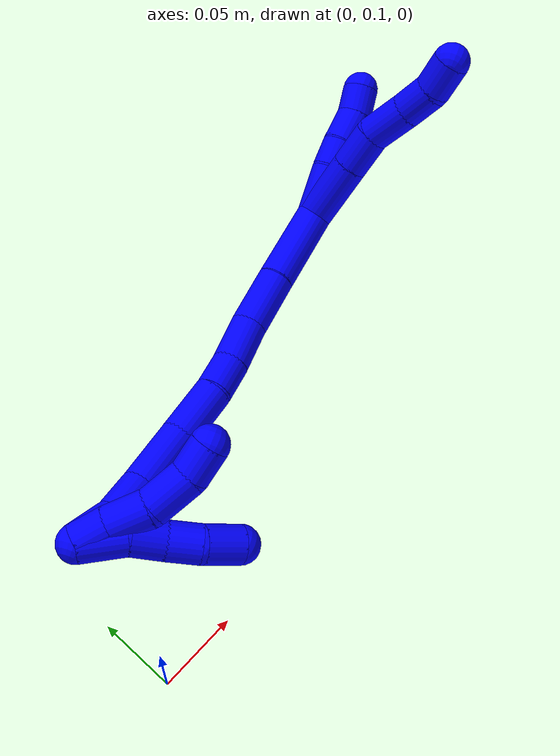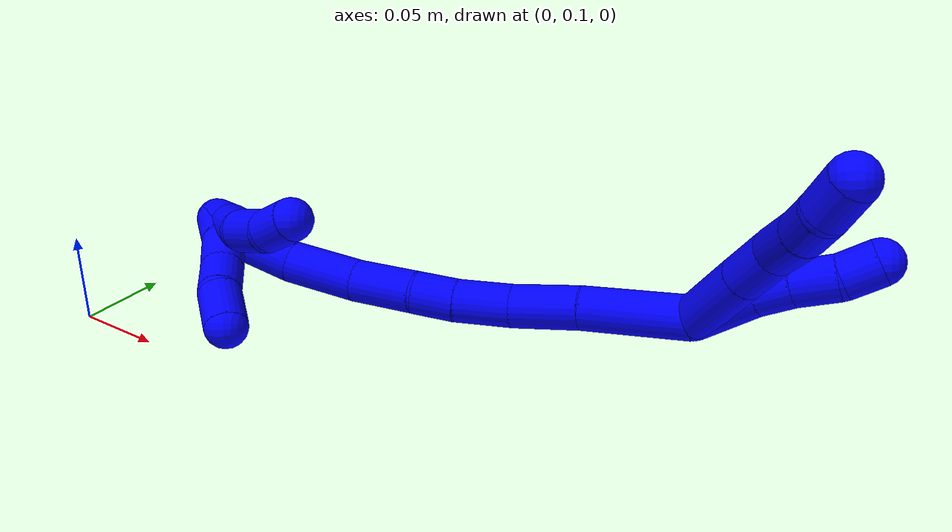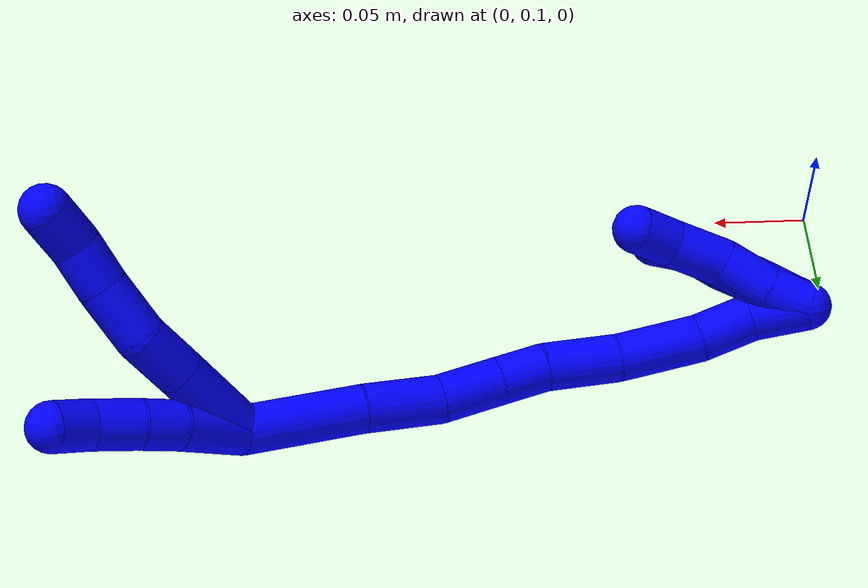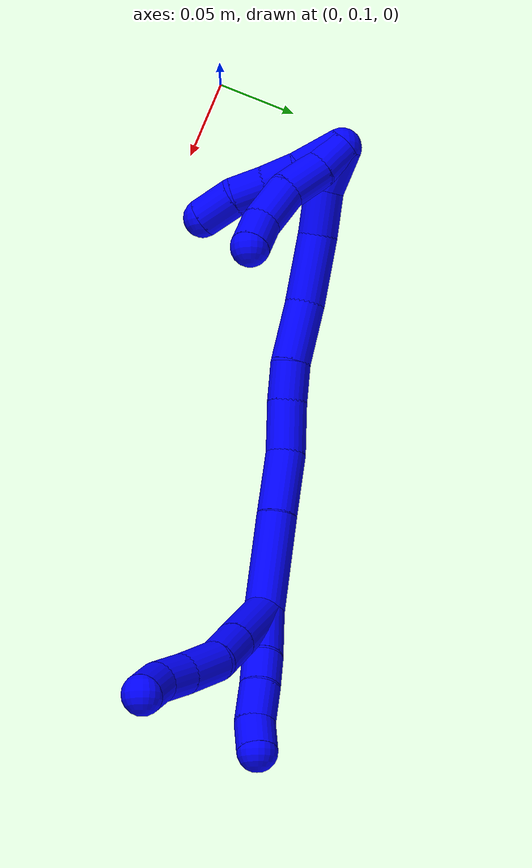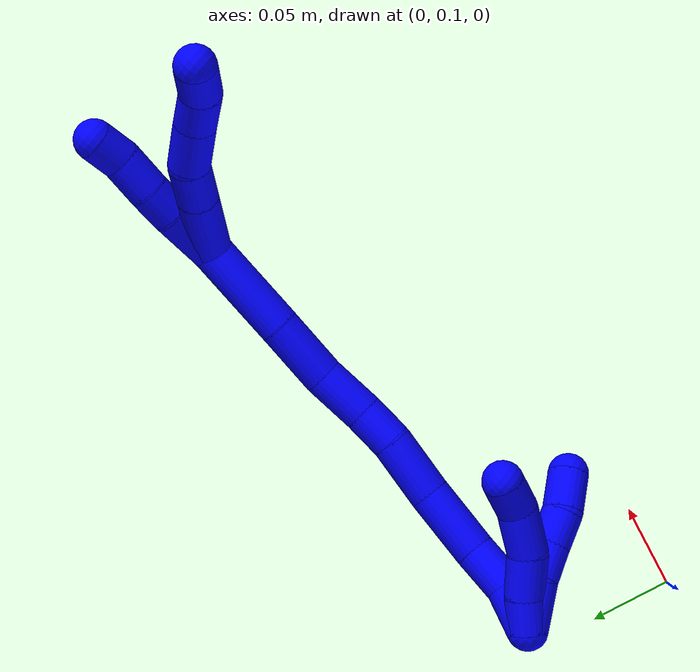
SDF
<sdf version="1.7">
 <world name="default">
  <model name="1">
   <static>0</static>
   <link name="1">
    <collision name="collision-cylinder-e_1_2_8">
     <pose>0.009985 -0.016543 0.01285 0.910367 0.444798 0.220477</pose>
     <geometry><cylinder><radius>0.0125</radius><length>0.04641</length></cylinder></geometry>
     <surface>
      <friction><ode><mu>1.16</mu><mu2>1.16</mu2><slip1>0</slip1><slip2>0</slip2></ode></friction>
      <contact><ode><kp>1e+06</kp><kd>1</kd><max_vel>0</max_vel><min_depth>0.001</min_depth></ode></contact>
     </surface>
    </collision>
    <visual name="visual-cylinder-e_1_2_8">
     <pose>0.009985 -0.016543 0.01285 0.910367 0.444798 0.220477</pose>
     <geometry><cylinder><radius>0.0125</radius><length>0.04641</length></cylinder></geometry>
     <material><ambient>0 0 1 1</ambient></material>
    </visual>
    <collision name="collision-cylinder-e_2_8_9">
     <pose>0.025883 -0.042737 0.033381 0.898678 0.447035 0.21837</pose>
     <geometry><cylinder><radius>0.0125</radius><length>0.027358</length></cylinder></geometry>
     <surface>
      <friction><ode><mu>1.16</mu><mu2>1.16</mu2><slip1>0</slip1><slip2>0</slip2></ode></friction>
      <contact><ode><kp>1e+06</kp><kd>1</kd><max_vel>0</max_vel><min_depth>0.001</min_depth></ode></contact>
     </surface>
    </collision>
    <visual name="visual-cylinder-e_2_8_9">
     <pose>0.025883 -0.042737 0.033381 0.898678 0.447035 0.21837</pose>
     <geometry><cylinder><radius>0.0125</radius><length>0.027358</length></cylinder></geometry>
     <material><ambient>0 0 1 1</ambient></material>
    </visual>
    <collision name="collision-cylinder-e_3_9_10">
     <pose>0.042039 -0.061512 0.046894 1.00192 0.757629 0.429182</pose>
     <geometry><cylinder><radius>0.0125</radius><length>0.02981</length></cylinder></geometry>
     <surface>
      <friction><ode><mu>1.16</mu><mu2>1.16</mu2><slip1>0</slip1><slip2>0</slip2></ode></friction>
      <contact><ode><kp>1e+06</kp><kd>1</kd><max_vel>0</max_vel><min_depth>0.001</min_depth></ode></contact>
     </surface>
    </collision>
    <visual name="visual-cylinder-e_3_9_10">
     <pose>0.042039 -0.061512 0.046894 1.00192 0.757629 0.429182</pose>
     <geometry><cylinder><radius>0.0125</radius><length>0.02981</length></cylinder></geometry>
     <material><ambient>0 0 1 1</ambient></material>
    </visual>
    <collision name="collision-cylinder-e_4_10_11">
     <pose>0.059913 -0.078558 0.056672 1.10884 0.71156 0.452308</pose>
     <geometry><cylinder><radius>0.0125</radius><length>0.023375</length></cylinder></geometry>
     <surface>
      <friction><ode><mu>1.16</mu><mu2>1.16</mu2><slip1>0</slip1><slip2>0</slip2></ode></friction>
      <contact><ode><kp>1e+06</kp><kd>1</kd><max_vel>0</max_vel><min_depth>0.001</min_depth></ode></contact>
     </surface>
    </collision>
    <visual name="visual-cylinder-e_4_10_11">
     <pose>0.059913 -0.078558 0.056672 1.10884 0.71156 0.452308</pose>
     <geometry><cylinder><radius>0.0125</radius><length>0.023375</length></cylinder></geometry>
     <material><ambient>0 0 1 1</ambient></material>
    </visual>
    <collision name="collision-cylinder-e_5_11_6">
     <pose>0.0721 -0.095635 0.065932 1.04468 0.406328 0.236082</pose>
     <geometry><cylinder><radius>0.0125</radius><length>0.023047</length></cylinder></geometry>
     <surface>
      <friction><ode><mu>1.16</mu><mu2>1.16</mu2><slip1>0</slip1><slip2>0</slip2></ode></friction>
      <contact><ode><kp>1e+06</kp><kd>1</kd><max_vel>0</max_vel><min_depth>0.001</min_depth></ode></contact>
     </surface>
    </collision>
    <visual name="visual-cylinder-e_5_11_6">
     <pose>0.0721 -0.095635 0.065932 1.04468 0.406328 0.236082</pose>
     <geometry><cylinder><radius>0.0125</radius><length>0.023047</length></cylinder></geometry>
     <material><ambient>0 0 1 1</ambient></material>
    </visual>
    <collision name="collision-cylinder-e_1_2_12">
     <pose>0.001098 -0.007843 0.015847 0.459548 0.062027 0.014513</pose>
     <geometry><cylinder><radius>0.0125</radius><length>0.035432</length></cylinder></geometry>
     <surface>
      <friction><ode><mu>1.16</mu><mu2>1.16</mu2><slip1>0</slip1><slip2>0</slip2></ode></friction>
      <contact><ode><kp>1e+06</kp><kd>1</kd><max_vel>0</max_vel><min_depth>0.001</min_depth></ode></contact>
     </surface>
    </collision>
    <visual name="visual-cylinder-e_1_2_12">
     <pose>0.001098 -0.007843 0.015847 0.459548 0.062027 0.014513</pose>
     <geometry><cylinder><radius>0.0125</radius><length>0.035432</length></cylinder></geometry>
     <material><ambient>0 0 1 1</ambient></material>
    </visual>
    <collision name="collision-cylinder-e_2_12_13">
     <pose>0.003315 -0.018981 0.041166 0.334862 0.111109 0.018798</pose>
     <geometry><cylinder><radius>0.0125</radius><length>0.02018</length></cylinder></geometry>
     <surface>
      <friction><ode><mu>1.16</mu><mu2>1.16</mu2><slip1>0</slip1><slip2>0</slip2></ode></friction>
      <contact><ode><kp>1e+06</kp><kd>1</kd><max_vel>0</max_vel><min_depth>0.001</min_depth></ode></contact>
     </surface>
    </collision>
    <visual name="visual-cylinder-e_2_12_13">
     <pose>0.003315 -0.018981 0.041166 0.334862 0.111109 0.018798</pose>
     <geometry><cylinder><radius>0.0125</radius><length>0.02018</length></cylinder></geometry>
     <material><ambient>0 0 1 1</ambient></material>
    </visual>
    <collision name="collision-cylinder-e_3_13_14">
     <pose>0.006267 -0.025028 0.062275 0.232111 0.152111 0.017767</pose>
     <geometry><cylinder><radius>0.0125</radius><length>0.024198</length></cylinder></geometry>
     <surface>
      <friction><ode><mu>1.16</mu><mu2>1.16</mu2><slip1>0</slip1><slip2>0</slip2></ode></friction>
      <contact><ode><kp>1e+06</kp><kd>1</kd><max_vel>0</max_vel><min_depth>0.001</min_depth></ode></contact>
     </surface>
    </collision>
    <visual name="visual-cylinder-e_3_13_14">
     <pose>0.006267 -0.025028 0.062275 0.232111 0.152111 0.017767</pose>
     <geometry><cylinder><radius>0.0125</radius><length>0.024198</length></cylinder></geometry>
     <material><ambient>0 0 1 1</ambient></material>
    </visual>
    <collision name="collision-cylinder-e_4_14_5">
     <pose>0.007671 -0.031728 0.083194 0.402403 -0.042535 -0.008677</pose>
     <geometry><cylinder><radius>0.0125</radius><length>0.02019</length></cylinder></geometry>
     <surface>
      <friction><ode><mu>1.16</mu><mu2>1.16</mu2><slip1>0</slip1><slip2>0</slip2></ode></friction>
      <contact><ode><kp>1e+06</kp><kd>1</kd><max_vel>0</max_vel><min_depth>0.001</min_depth></ode></contact>
     </surface>
    </collision>
    <visual name="visual-cylinder-e_4_14_5">
     <pose>0.007671 -0.031728 0.083194 0.402403 -0.042535 -0.008677</pose>
     <geometry><cylinder><radius>0.0125</radius><length>0.02019</length></cylinder></geometry>
     <material><ambient>0 0 1 1</ambient></material>
    </visual>
    <collision name="collision-cylinder-e_1_2_15">
     <pose>-0.00426 -0.000647 -0.030305 3.12024 -0.139625 -2.83853</pose>
     <geometry><cylinder><radius>0.0125</radius><length>0.061219</length></cylinder></geometry>
     <surface>
      <friction><ode><mu>1.16</mu><mu2>1.16</mu2><slip1>0</slip1><slip2>0</slip2></ode></friction>
      <contact><ode><kp>1e+06</kp><kd>1</kd><max_vel>0</max_vel><min_depth>0.001</min_depth></ode></contact>
     </surface>
    </collision>
    <visual name="visual-cylinder-e_1_2_15">
     <pose>-0.00426 -0.000647 -0.030305 3.12024 -0.139625 -2.83853</pose>
     <geometry><cylinder><radius>0.0125</radius><length>0.061219</length></cylinder></geometry>
     <material><ambient>0 0 1 1</ambient></material>
    </visual>
    <collision name="collision-cylinder-e_2_15_16">
     <pose>-0.011581 -0.000237 -0.080439 -3.0883 -0.152968 2.47214</pose>
     <geometry><cylinder><radius>0.0125</radius><length>0.040184</length></cylinder></geometry>
     <surface>
      <friction><ode><mu>1.16</mu><mu2>1.16</mu2><slip1>0</slip1><slip2>0</slip2></ode></friction>
      <contact><ode><kp>1e+06</kp><kd>1</kd><max_vel>0</max_vel><min_depth>0.001</min_depth></ode></contact>
     </surface>
    </collision>
    <visual name="visual-cylinder-e_2_15_16">
     <pose>-0.011581 -0.000237 -0.080439 -3.0883 -0.152968 2.47214</pose>
     <geometry><cylinder><radius>0.0125</radius><length>0.040184</length></cylinder></geometry>
     <material><ambient>0 0 1 1</ambient></material>
    </visual>
    <collision name="collision-cylinder-e_3_16_17">
     <pose>-0.015246 -0.00047 -0.116675 3.06309 -0.036615 -0.872514</pose>
     <geometry><cylinder><radius>0.0125</radius><length>0.032937</length></cylinder></geometry>
     <surface>
      <friction><ode><mu>1.16</mu><mu2>1.16</mu2><slip1>0</slip1><slip2>0</slip2></ode></friction>
      <contact><ode><kp>1e+06</kp><kd>1</kd><max_vel>0</max_vel><min_depth>0.001</min_depth></ode></contact>
     </surface>
    </collision>
    <visual name="visual-cylinder-e_3_16_17">
     <pose>-0.015246 -0.00047 -0.116675 3.06309 -0.036615 -0.872514</pose>
     <geometry><cylinder><radius>0.0125</radius><length>0.032937</length></cylinder></geometry>
     <material><ambient>0 0 1 1</ambient></material>
    </visual>
    <collision name="collision-cylinder-e_4_17_18">
     <pose>-0.01699 -0.003724 -0.145271 2.98186 -0.092169 -1.04549</pose>
     <geometry><cylinder><radius>0.0125</radius><length>0.024798</length></cylinder></geometry>
     <surface>
      <friction><ode><mu>1.16</mu><mu2>1.16</mu2><slip1>0</slip1><slip2>0</slip2></ode></friction>
      <contact><ode><kp>1e+06</kp><kd>1</kd><max_vel>0</max_vel><min_depth>0.001</min_depth></ode></contact>
     </surface>
    </collision>
    <visual name="visual-cylinder-e_4_17_18">
     <pose>-0.01699 -0.003724 -0.145271 2.98186 -0.092169 -1.04549</pose>
     <geometry><cylinder><radius>0.0125</radius><length>0.024798</length></cylinder></geometry>
     <material><ambient>0 0 1 1</ambient></material>
    </visual>
    <collision name="collision-cylinder-e_5_18_19">
     <pose>-0.022746 -0.007206 -0.176241 3.06091 -0.240198 -2.49602</pose>
     <geometry><cylinder><radius>0.0125</radius><length>0.038798</length></cylinder></geometry>
     <surface>
      <friction><ode><mu>1.16</mu><mu2>1.16</mu2><slip1>0</slip1><slip2>0</slip2></ode></friction>
      <contact><ode><kp>1e+06</kp><kd>1</kd><max_vel>0</max_vel><min_depth>0.001</min_depth></ode></contact>
     </surface>
    </collision>
    <visual name="visual-cylinder-e_5_18_19">
     <pose>-0.022746 -0.007206 -0.176241 3.06091 -0.240198 -2.49602</pose>
     <geometry><cylinder><radius>0.0125</radius><length>0.038798</length></cylinder></geometry>
     <material><ambient>0 0 1 1</ambient></material>
    </visual>
    <collision name="collision-cylinder-e_6_19_20">
     <pose>-0.031448 -0.013061 -0.216191 2.93955 -0.186945 -1.4927</pose>
     <geometry><cylinder><radius>0.0125</radius><length>0.043985</length></cylinder></geometry>
     <surface>
      <friction><ode><mu>1.16</mu><mu2>1.16</mu2><slip1>0</slip1><slip2>0</slip2></ode></friction>
      <contact><ode><kp>1e+06</kp><kd>1</kd><max_vel>0</max_vel><min_depth>0.001</min_depth></ode></contact>
     </surface>
    </collision>
    <visual name="visual-cylinder-e_6_19_20">
     <pose>-0.031448 -0.013061 -0.216191 2.93955 -0.186945 -1.4927</pose>
     <geometry><cylinder><radius>0.0125</radius><length>0.043985</length></cylinder></geometry>
     <material><ambient>0 0 1 1</ambient></material>
    </visual>
    <collision name="collision-cylinder-e_7_20_21">
     <pose>-0.037393 -0.022875 -0.250728 2.75273 -0.127844 -0.628567</pose>
     <geometry><cylinder><radius>0.0125</radius><length>0.02913</length></cylinder></geometry>
     <surface>
      <friction><ode><mu>1.16</mu><mu2>1.16</mu2><slip1>0</slip1><slip2>0</slip2></ode></friction>
      <contact><ode><kp>1e+06</kp><kd>1</kd><max_vel>0</max_vel><min_depth>0.001</min_depth></ode></contact>
     </surface>
    </collision>
    <visual name="visual-cylinder-e_7_20_21">
     <pose>-0.037393 -0.022875 -0.250728 2.75273 -0.127844 -0.628567</pose>
     <geometry><cylinder><radius>0.0125</radius><length>0.02913</length></cylinder></geometry>
     <material><ambient>0 0 1 1</ambient></material>
    </visual>
    <collision name="collision-cylinder-e_8_21_1">
     <pose>-0.044675 -0.03421 -0.27617 2.68988 -0.384171 -1.4048</pose>
     <geometry><cylinder><radius>0.0125</radius><length>0.028949</length></cylinder></geometry>
     <surface>
      <friction><ode><mu>1.16</mu><mu2>1.16</mu2><slip1>0</slip1><slip2>0</slip2></ode></friction>
      <contact><ode><kp>1e+06</kp><kd>1</kd><max_vel>0</max_vel><min_depth>0.001</min_depth></ode></contact>
     </surface>
    </collision>
    <visual name="visual-cylinder-e_8_21_1">
     <pose>-0.044675 -0.03421 -0.27617 2.68988 -0.384171 -1.4048</pose>
     <geometry><cylinder><radius>0.0125</radius><length>0.028949</length></cylinder></geometry>
     <material><ambient>0 0 1 1</ambient></material>
    </visual>
    <collision name="collision-cylinder-e_1_1_22">
     <pose>-0.036626 -0.038233 -0.280882 -0.244173 1.058 -0.143205</pose>
     <geometry><cylinder><radius>0.0125</radius><length>0.030925</length></cylinder></geometry>
     <surface>
      <friction><ode><mu>1.16</mu><mu2>1.16</mu2><slip1>0</slip1><slip2>0</slip2></ode></friction>
      <contact><ode><kp>1e+06</kp><kd>1</kd><max_vel>0</max_vel><min_depth>0.001</min_depth></ode></contact>
     </surface>
    </collision>
    <visual name="visual-cylinder-e_1_1_22">
     <pose>-0.036626 -0.038233 -0.280882 -0.244173 1.058 -0.143205</pose>
     <geometry><cylinder><radius>0.0125</radius><length>0.030925</length></cylinder></geometry>
     <material><ambient>0 0 1 1</ambient></material>
    </visual>
    <collision name="collision-cylinder-e_2_22_23">
     <pose>-0.013383 -0.032068 -0.270515 -0.964156 1.07591 -0.605229</pose>
     <geometry><cylinder><radius>0.0125</radius><length>0.022202</length></cylinder></geometry>
     <surface>
      <friction><ode><mu>1.16</mu><mu2>1.16</mu2><slip1>0</slip1><slip2>0</slip2></ode></friction>
      <contact><ode><kp>1e+06</kp><kd>1</kd><max_vel>0</max_vel><min_depth>0.001</min_depth></ode></contact>
     </surface>
    </collision>
    <visual name="visual-cylinder-e_2_22_23">
     <pose>-0.013383 -0.032068 -0.270515 -0.964156 1.07591 -0.605229</pose>
     <geometry><cylinder><radius>0.0125</radius><length>0.022202</length></cylinder></geometry>
     <material><ambient>0 0 1 1</ambient></material>
    </visual>
    <collision name="collision-cylinder-e_3_23_24">
     <pose>0.006543 -0.024824 -0.264518 -0.771953 1.18084 -0.531762</pose>
     <geometry><cylinder><radius>0.0125</radius><length>0.021963</length></cylinder></geometry>
     <surface>
      <friction><ode><mu>1.16</mu><mu2>1.16</mu2><slip1>0</slip1><slip2>0</slip2></ode></friction>
      <contact><ode><kp>1e+06</kp><kd>1</kd><max_vel>0</max_vel><min_depth>0.001</min_depth></ode></contact>
     </surface>
    </collision>
    <visual name="visual-cylinder-e_3_23_24">
     <pose>0.006543 -0.024824 -0.264518 -0.771953 1.18084 -0.531762</pose>
     <geometry><cylinder><radius>0.0125</radius><length>0.021963</length></cylinder></geometry>
     <material><ambient>0 0 1 1</ambient></material>
    </visual>
    <collision name="collision-cylinder-e_4_24_4">
     <pose>0.026469 -0.01609 -0.256448 -0.853505 0.901588 -0.43327</pose>
     <geometry><cylinder><radius>0.0125</radius><length>0.02491</length></cylinder></geometry>
     <surface>
      <friction><ode><mu>1.16</mu><mu2>1.16</mu2><slip1>0</slip1><slip2>0</slip2></ode></friction>
      <contact><ode><kp>1e+06</kp><kd>1</kd><max_vel>0</max_vel><min_depth>0.001</min_depth></ode></contact>
     </surface>
    </collision>
    <visual name="visual-cylinder-e_4_24_4">
     <pose>0.026469 -0.01609 -0.256448 -0.853505 0.901588 -0.43327</pose>
     <geometry><cylinder><radius>0.0125</radius><length>0.02491</length></cylinder></geometry>
     <material><ambient>0 0 1 1</ambient></material>
    </visual>
    <collision name="collision-cylinder-e_1_1_25">
     <pose>-0.042723 -0.041103 -0.280577 0.13428 0.761581 0.053824</pose>
     <geometry><cylinder><radius>0.0125</radius><length>0.021378</length></cylinder></geometry>
     <surface>
      <friction><ode><mu>1.16</mu><mu2>1.16</mu2><slip1>0</slip1><slip2>0</slip2></ode></friction>
      <contact><ode><kp>1e+06</kp><kd>1</kd><max_vel>0</max_vel><min_depth>0.001</min_depth></ode></contact>
     </surface>
    </collision>
    <visual name="visual-cylinder-e_1_1_25">
     <pose>-0.042723 -0.041103 -0.280577 0.13428 0.761581 0.053824</pose>
     <geometry><cylinder><radius>0.0125</radius><length>0.021378</length></cylinder></geometry>
     <material><ambient>0 0 1 1</ambient></material>
    </visual>
    <collision name="collision-cylinder-e_2_25_26">
     <pose>-0.024744 -0.044413 -0.264655 0.26882 0.891467 0.129043</pose>
     <geometry><cylinder><radius>0.0125</radius><length>0.027257</length></cylinder></geometry>
     <surface>
      <friction><ode><mu>1.16</mu><mu2>1.16</mu2><slip1>0</slip1><slip2>0</slip2></ode></friction>
      <contact><ode><kp>1e+06</kp><kd>1</kd><max_vel>0</max_vel><min_depth>0.001</min_depth></ode></contact>
     </surface>
    </collision>
    <visual name="visual-cylinder-e_2_25_26">
     <pose>-0.024744 -0.044413 -0.264655 0.26882 0.891467 0.129043</pose>
     <geometry><cylinder><radius>0.0125</radius><length>0.027257</length></cylinder></geometry>
     <material><ambient>0 0 1 1</ambient></material>
    </visual>
    <collision name="collision-cylinder-e_3_26_27">
     <pose>-0.006 -0.049778 -0.244734 0.258973 0.59345 0.079585</pose>
     <geometry><cylinder><radius>0.0125</radius><length>0.029117</length></cylinder></geometry>
     <surface>
      <friction><ode><mu>1.16</mu><mu2>1.16</mu2><slip1>0</slip1><slip2>0</slip2></ode></friction>
      <contact><ode><kp>1e+06</kp><kd>1</kd><max_vel>0</max_vel><min_depth>0.001</min_depth></ode></contact>
     </surface>
    </collision>
    <visual name="visual-cylinder-e_3_26_27">
     <pose>-0.006 -0.049778 -0.244734 0.258973 0.59345 0.079585</pose>
     <geometry><cylinder><radius>0.0125</radius><length>0.029117</length></cylinder></geometry>
     <material><ambient>0 0 1 1</ambient></material>
    </visual>
    <collision name="collision-cylinder-e_4_27_3">
     <pose>0.00579 -0.057621 -0.223694 0.469267 0.33424 0.080604</pose>
     <geometry><cylinder><radius>0.0125</radius><length>0.022249</length></cylinder></geometry>
     <surface>
      <friction><ode><mu>1.16</mu><mu2>1.16</mu2><slip1>0</slip1><slip2>0</slip2></ode></friction>
      <contact><ode><kp>1e+06</kp><kd>1</kd><max_vel>0</max_vel><min_depth>0.001</min_depth></ode></contact>
     </surface>
    </collision>
    <visual name="visual-cylinder-e_4_27_3">
     <pose>0.00579 -0.057621 -0.223694 0.469267 0.33424 0.080604</pose>
     <geometry><cylinder><radius>0.0125</radius><length>0.022249</length></cylinder></geometry>
     <material><ambient>0 0 1 1</ambient></material>
    </visual>
    <collision name="collision-sphere-3">
     <pose>0.00944 -0.062373 -0.214322 0 -0 0</pose>
     <geometry><sphere><radius>0.0125</radius></sphere></geometry>
     <surface>
      <friction><ode><mu>1.16</mu><mu2>1.16</mu2><slip1>0</slip1><slip2>0</slip2></ode></friction>
      <contact><ode><kp>1e+06</kp><kd>1</kd><max_vel>0</max_vel><min_depth>0.001</min_depth></ode></contact>
     </surface>
    </collision>
    <visual name="visual-sphere-3">
     <pose>0.00944 -0.062373 -0.214322 0 -0 0</pose>
     <geometry><sphere><radius>0.0125</radius></sphere></geometry>
     <material><ambient>0 0 1 1</ambient></material>
    </visual>
    <collision name="collision-sphere-27">
     <pose>0.002141 -0.052868 -0.233067 0 -0 0</pose>
     <geometry><sphere><radius>0.0125</radius></sphere></geometry>
     <surface>
      <friction><ode><mu>1.16</mu><mu2>1.16</mu2><slip1>0</slip1><slip2>0</slip2></ode></friction>
      <contact><ode><kp>1e+06</kp><kd>1</kd><max_vel>0</max_vel><min_depth>0.001</min_depth></ode></contact>
     </surface>
    </collision>
    <visual name="visual-sphere-27">
     <pose>0.002141 -0.052868 -0.233067 0 -0 0</pose>
     <geometry><sphere><radius>0.0125</radius></sphere></geometry>
     <material><ambient>0 0 1 1</ambient></material>
    </visual>
    <collision name="collision-sphere-26">
     <pose>-0.014142 -0.046687 -0.2564 0 -0 0</pose>
     <geometry><sphere><radius>0.0125</radius></sphere></geometry>
     <surface>
      <friction><ode><mu>1.16</mu><mu2>1.16</mu2><slip1>0</slip1><slip2>0</slip2></ode></friction>
      <contact><ode><kp>1e+06</kp><kd>1</kd><max_vel>0</max_vel><min_depth>0.001</min_depth></ode></contact>
     </surface>
    </collision>
    <visual name="visual-sphere-26">
     <pose>-0.014142 -0.046687 -0.2564 0 -0 0</pose>
     <geometry><sphere><radius>0.0125</radius></sphere></geometry>
     <material><ambient>0 0 1 1</ambient></material>
    </visual>
    <collision name="collision-sphere-25">
     <pose>-0.035347 -0.042139 -0.27291 0 -0 0</pose>
     <geometry><sphere><radius>0.0125</radius></sphere></geometry>
     <surface>
      <friction><ode><mu>1.16</mu><mu2>1.16</mu2><slip1>0</slip1><slip2>0</slip2></ode></friction>
      <contact><ode><kp>1e+06</kp><kd>1</kd><max_vel>0</max_vel><min_depth>0.001</min_depth></ode></contact>
     </surface>
    </collision>
    <visual name="visual-sphere-25">
     <pose>-0.035347 -0.042139 -0.27291 0 -0 0</pose>
     <geometry><sphere><radius>0.0125</radius></sphere></geometry>
     <material><ambient>0 0 1 1</ambient></material>
    </visual>
    <collision name="collision-sphere-4">
     <pose>0.036238 -0.010267 -0.251369 0 -0 0</pose>
     <geometry><sphere><radius>0.0125</radius></sphere></geometry>
     <surface>
      <friction><ode><mu>1.16</mu><mu2>1.16</mu2><slip1>0</slip1><slip2>0</slip2></ode></friction>
      <contact><ode><kp>1e+06</kp><kd>1</kd><max_vel>0</max_vel><min_depth>0.001</min_depth></ode></contact>
     </surface>
    </collision>
    <visual name="visual-sphere-4">
     <pose>0.036238 -0.010267 -0.251369 0 -0 0</pose>
     <geometry><sphere><radius>0.0125</radius></sphere></geometry>
     <material><ambient>0 0 1 1</ambient></material>
    </visual>
    <collision name="collision-sphere-24">
     <pose>0.016701 -0.021912 -0.261527 0 -0 0</pose>
     <geometry><sphere><radius>0.0125</radius></sphere></geometry>
     <surface>
      <friction><ode><mu>1.16</mu><mu2>1.16</mu2><slip1>0</slip1><slip2>0</slip2></ode></friction>
      <contact><ode><kp>1e+06</kp><kd>1</kd><max_vel>0</max_vel><min_depth>0.001</min_depth></ode></contact>
     </surface>
    </collision>
    <visual name="visual-sphere-24">
     <pose>0.016701 -0.021912 -0.261527 0 -0 0</pose>
     <geometry><sphere><radius>0.0125</radius></sphere></geometry>
     <material><ambient>0 0 1 1</ambient></material>
    </visual>
    <collision name="collision-sphere-23">
     <pose>-0.003614 -0.027736 -0.267509 0 -0 0</pose>
     <geometry><sphere><radius>0.0125</radius></sphere></geometry>
     <surface>
      <friction><ode><mu>1.16</mu><mu2>1.16</mu2><slip1>0</slip1><slip2>0</slip2></ode></friction>
      <contact><ode><kp>1e+06</kp><kd>1</kd><max_vel>0</max_vel><min_depth>0.001</min_depth></ode></contact>
     </surface>
    </collision>
    <visual name="visual-sphere-23">
     <pose>-0.003614 -0.027736 -0.267509 0 -0 0</pose>
     <geometry><sphere><radius>0.0125</radius></sphere></geometry>
     <material><ambient>0 0 1 1</ambient></material>
    </visual>
    <collision name="collision-sphere-22">
     <pose>-0.023152 -0.036399 -0.273521 0 -0 0</pose>
     <geometry><sphere><radius>0.0125</radius></sphere></geometry>
     <surface>
      <friction><ode><mu>1.16</mu><mu2>1.16</mu2><slip1>0</slip1><slip2>0</slip2></ode></friction>
      <contact><ode><kp>1e+06</kp><kd>1</kd><max_vel>0</max_vel><min_depth>0.001</min_depth></ode></contact>
     </surface>
    </collision>
    <visual name="visual-sphere-22">
     <pose>-0.023152 -0.036399 -0.273521 0 -0 0</pose>
     <geometry><sphere><radius>0.0125</radius></sphere></geometry>
     <material><ambient>0 0 1 1</ambient></material>
    </visual>
    <collision name="collision-sphere-1">
     <pose>-0.050099 -0.040067 -0.288243 0 -0 0</pose>
     <geometry><sphere><radius>0.0125</radius></sphere></geometry>
     <surface>
      <friction><ode><mu>1.16</mu><mu2>1.16</mu2><slip1>0</slip1><slip2>0</slip2></ode></friction>
      <contact><ode><kp>1e+06</kp><kd>1</kd><max_vel>0</max_vel><min_depth>0.001</min_depth></ode></contact>
     </surface>
    </collision>
    <visual name="visual-sphere-1">
     <pose>-0.050099 -0.040067 -0.288243 0 -0 0</pose>
     <geometry><sphere><radius>0.0125</radius></sphere></geometry>
     <material><ambient>0 0 1 1</ambient></material>
    </visual>
    <collision name="collision-sphere-21">
     <pose>-0.03925 -0.028352 -0.264096 0 -0 0</pose>
     <geometry><sphere><radius>0.0125</radius></sphere></geometry>
     <surface>
      <friction><ode><mu>1.16</mu><mu2>1.16</mu2><slip1>0</slip1><slip2>0</slip2></ode></friction>
      <contact><ode><kp>1e+06</kp><kd>1</kd><max_vel>0</max_vel><min_depth>0.001</min_depth></ode></contact>
     </surface>
    </collision>
    <visual name="visual-sphere-21">
     <pose>-0.03925 -0.028352 -0.264096 0 -0 0</pose>
     <geometry><sphere><radius>0.0125</radius></sphere></geometry>
     <material><ambient>0 0 1 1</ambient></material>
    </visual>
    <collision name="collision-sphere-6">
     <pose>0.076654 -0.104789 0.071248 0 -0 0</pose>
     <geometry><sphere><radius>0.0125</radius></sphere></geometry>
     <surface>
      <friction><ode><mu>1.16</mu><mu2>1.16</mu2><slip1>0</slip1><slip2>0</slip2></ode></friction>
      <contact><ode><kp>1e+06</kp><kd>1</kd><max_vel>0</max_vel><min_depth>0.001</min_depth></ode></contact>
     </surface>
    </collision>
    <visual name="visual-sphere-6">
     <pose>0.076654 -0.104789 0.071248 0 -0 0</pose>
     <geometry><sphere><radius>0.0125</radius></sphere></geometry>
     <material><ambient>0 0 1 1</ambient></material>
    </visual>
    <collision name="collision-sphere-11">
     <pose>0.067545 -0.086482 0.060617 0 -0 0</pose>
     <geometry><sphere><radius>0.0125</radius></sphere></geometry>
     <surface>
      <friction><ode><mu>1.16</mu><mu2>1.16</mu2><slip1>0</slip1><slip2>0</slip2></ode></friction>
      <contact><ode><kp>1e+06</kp><kd>1</kd><max_vel>0</max_vel><min_depth>0.001</min_depth></ode></contact>
     </surface>
    </collision>
    <visual name="visual-sphere-11">
     <pose>0.067545 -0.086482 0.060617 0 -0 0</pose>
     <geometry><sphere><radius>0.0125</radius></sphere></geometry>
     <material><ambient>0 0 1 1</ambient></material>
    </visual>
    <collision name="collision-sphere-10">
     <pose>0.052281 -0.070635 0.052726 0 -0 0</pose>
     <geometry><sphere><radius>0.0125</radius></sphere></geometry>
     <surface>
      <friction><ode><mu>1.16</mu><mu2>1.16</mu2><slip1>0</slip1><slip2>0</slip2></ode></friction>
      <contact><ode><kp>1e+06</kp><kd>1</kd><max_vel>0</max_vel><min_depth>0.001</min_depth></ode></contact>
     </surface>
    </collision>
    <visual name="visual-sphere-10">
     <pose>0.052281 -0.070635 0.052726 0 -0 0</pose>
     <geometry><sphere><radius>0.0125</radius></sphere></geometry>
     <material><ambient>0 0 1 1</ambient></material>
    </visual>
    <collision name="collision-sphere-9">
     <pose>0.031796 -0.05239 0.041061 0 -0 0</pose>
     <geometry><sphere><radius>0.0125</radius></sphere></geometry>
     <surface>
      <friction><ode><mu>1.16</mu><mu2>1.16</mu2><slip1>0</slip1><slip2>0</slip2></ode></friction>
      <contact><ode><kp>1e+06</kp><kd>1</kd><max_vel>0</max_vel><min_depth>0.001</min_depth></ode></contact>
     </surface>
    </collision>
    <visual name="visual-sphere-9">
     <pose>0.031796 -0.05239 0.041061 0 -0 0</pose>
     <geometry><sphere><radius>0.0125</radius></sphere></geometry>
     <material><ambient>0 0 1 1</ambient></material>
    </visual>
    <collision name="collision-sphere-2">
     <geometry><sphere><radius>0.0125</radius></sphere></geometry>
     <surface>
      <friction><ode><mu>1.16</mu><mu2>1.16</mu2><slip1>0</slip1><slip2>0</slip2></ode></friction>
      <contact><ode><kp>1e+06</kp><kd>1</kd><max_vel>0</max_vel><min_depth>0.001</min_depth></ode></contact>
     </surface>
    </collision>
    <visual name="visual-sphere-2">
     <geometry><sphere><radius>0.0125</radius></sphere></geometry>
     <material><ambient>0 0 1 1</ambient></material>
    </visual>
    <collision name="collision-sphere-19">
     <pose>-0.027361 -0.008725 -0.195021 0 -0 0</pose>
     <geometry><sphere><radius>0.0125</radius></sphere></geometry>
     <surface>
      <friction><ode><mu>1.16</mu><mu2>1.16</mu2><slip1>0</slip1><slip2>0</slip2></ode></friction>
      <contact><ode><kp>1e+06</kp><kd>1</kd><max_vel>0</max_vel><min_depth>0.001</min_depth></ode></contact>
     </surface>
    </collision>
    <visual name="visual-sphere-19">
     <pose>-0.027361 -0.008725 -0.195021 0 -0 0</pose>
     <geometry><sphere><radius>0.0125</radius></sphere></geometry>
     <material><ambient>0 0 1 1</ambient></material>
    </visual>
    <collision name="collision-sphere-8">
     <pose>0.019969 -0.033085 0.0257 0 -0 0</pose>
     <geometry><sphere><radius>0.0125</radius></sphere></geometry>
     <surface>
      <friction><ode><mu>1.16</mu><mu2>1.16</mu2><slip1>0</slip1><slip2>0</slip2></ode></friction>
      <contact><ode><kp>1e+06</kp><kd>1</kd><max_vel>0</max_vel><min_depth>0.001</min_depth></ode></contact>
     </surface>
    </collision>
    <visual name="visual-sphere-8">
     <pose>0.019969 -0.033085 0.0257 0 -0 0</pose>
     <geometry><sphere><radius>0.0125</radius></sphere></geometry>
     <material><ambient>0 0 1 1</ambient></material>
    </visual>
    <collision name="collision-sphere-12">
     <pose>0.002196 -0.015685 0.031695 0 -0 0</pose>
     <geometry><sphere><radius>0.0125</radius></sphere></geometry>
     <surface>
      <friction><ode><mu>1.16</mu><mu2>1.16</mu2><slip1>0</slip1><slip2>0</slip2></ode></friction>
      <contact><ode><kp>1e+06</kp><kd>1</kd><max_vel>0</max_vel><min_depth>0.001</min_depth></ode></contact>
     </surface>
    </collision>
    <visual name="visual-sphere-12">
     <pose>0.002196 -0.015685 0.031695 0 -0 0</pose>
     <geometry><sphere><radius>0.0125</radius></sphere></geometry>
     <material><ambient>0 0 1 1</ambient></material>
    </visual>
    <collision name="collision-sphere-13">
     <pose>0.004434 -0.022276 0.050637 0 -0 0</pose>
     <geometry><sphere><radius>0.0125</radius></sphere></geometry>
     <surface>
      <friction><ode><mu>1.16</mu><mu2>1.16</mu2><slip1>0</slip1><slip2>0</slip2></ode></friction>
      <contact><ode><kp>1e+06</kp><kd>1</kd><max_vel>0</max_vel><min_depth>0.001</min_depth></ode></contact>
     </surface>
    </collision>
    <visual name="visual-sphere-13">
     <pose>0.004434 -0.022276 0.050637 0 -0 0</pose>
     <geometry><sphere><radius>0.0125</radius></sphere></geometry>
     <material><ambient>0 0 1 1</ambient></material>
    </visual>
    <collision name="collision-sphere-14">
     <pose>0.008101 -0.027779 0.073914 0 -0 0</pose>
     <geometry><sphere><radius>0.0125</radius></sphere></geometry>
     <surface>
      <friction><ode><mu>1.16</mu><mu2>1.16</mu2><slip1>0</slip1><slip2>0</slip2></ode></friction>
      <contact><ode><kp>1e+06</kp><kd>1</kd><max_vel>0</max_vel><min_depth>0.001</min_depth></ode></contact>
     </surface>
    </collision>
    <visual name="visual-sphere-14">
     <pose>0.008101 -0.027779 0.073914 0 -0 0</pose>
     <geometry><sphere><radius>0.0125</radius></sphere></geometry>
     <material><ambient>0 0 1 1</ambient></material>
    </visual>
    <collision name="collision-sphere-5">
     <pose>0.007242 -0.035678 0.092474 0 -0 0</pose>
     <geometry><sphere><radius>0.0125</radius></sphere></geometry>
     <surface>
      <friction><ode><mu>1.16</mu><mu2>1.16</mu2><slip1>0</slip1><slip2>0</slip2></ode></friction>
      <contact><ode><kp>1e+06</kp><kd>1</kd><max_vel>0</max_vel><min_depth>0.001</min_depth></ode></contact>
     </surface>
    </collision>
    <visual name="visual-sphere-5">
     <pose>0.007242 -0.035678 0.092474 0 -0 0</pose>
     <geometry><sphere><radius>0.0125</radius></sphere></geometry>
     <material><ambient>0 0 1 1</ambient></material>
    </visual>
    <collision name="collision-sphere-15">
     <pose>-0.00852 -0.001295 -0.06061 0 -0 0</pose>
     <geometry><sphere><radius>0.0125</radius></sphere></geometry>
     <surface>
      <friction><ode><mu>1.16</mu><mu2>1.16</mu2><slip1>0</slip1><slip2>0</slip2></ode></friction>
      <contact><ode><kp>1e+06</kp><kd>1</kd><max_vel>0</max_vel><min_depth>0.001</min_depth></ode></contact>
     </surface>
    </collision>
    <visual name="visual-sphere-15">
     <pose>-0.00852 -0.001295 -0.06061 0 -0 0</pose>
     <geometry><sphere><radius>0.0125</radius></sphere></geometry>
     <material><ambient>0 0 1 1</ambient></material>
    </visual>
    <collision name="collision-sphere-16">
     <pose>-0.014643 0.000821 -0.100268 0 -0 0</pose>
     <geometry><sphere><radius>0.0125</radius></sphere></geometry>
     <surface>
      <friction><ode><mu>1.16</mu><mu2>1.16</mu2><slip1>0</slip1><slip2>0</slip2></ode></friction>
      <contact><ode><kp>1e+06</kp><kd>1</kd><max_vel>0</max_vel><min_depth>0.001</min_depth></ode></contact>
     </surface>
    </collision>
    <visual name="visual-sphere-16">
     <pose>-0.014643 0.000821 -0.100268 0 -0 0</pose>
     <geometry><sphere><radius>0.0125</radius></sphere></geometry>
     <material><ambient>0 0 1 1</ambient></material>
    </visual>
    <collision name="collision-sphere-17">
     <pose>-0.015849 -0.00176 -0.133082 0 -0 0</pose>
     <geometry><sphere><radius>0.0125</radius></sphere></geometry>
     <surface>
      <friction><ode><mu>1.16</mu><mu2>1.16</mu2><slip1>0</slip1><slip2>0</slip2></ode></friction>
      <contact><ode><kp>1e+06</kp><kd>1</kd><max_vel>0</max_vel><min_depth>0.001</min_depth></ode></contact>
     </surface>
    </collision>
    <visual name="visual-sphere-17">
     <pose>-0.015849 -0.00176 -0.133082 0 -0 0</pose>
     <geometry><sphere><radius>0.0125</radius></sphere></geometry>
     <material><ambient>0 0 1 1</ambient></material>
    </visual>
    <collision name="collision-sphere-18">
     <pose>-0.018131 -0.005688 -0.15746 0 -0 0</pose>
     <geometry><sphere><radius>0.0125</radius></sphere></geometry>
     <surface>
      <friction><ode><mu>1.16</mu><mu2>1.16</mu2><slip1>0</slip1><slip2>0</slip2></ode></friction>
      <contact><ode><kp>1e+06</kp><kd>1</kd><max_vel>0</max_vel><min_depth>0.001</min_depth></ode></contact>
     </surface>
    </collision>
    <visual name="visual-sphere-18">
     <pose>-0.018131 -0.005688 -0.15746 0 -0 0</pose>
     <geometry><sphere><radius>0.0125</radius></sphere></geometry>
     <material><ambient>0 0 1 1</ambient></material>
    </visual>
    <collision name="collision-sphere-20">
     <pose>-0.035536 -0.017398 -0.237361 0 -0 0</pose>
     <geometry><sphere><radius>0.0125</radius></sphere></geometry>
     <surface>
      <friction><ode><mu>1.16</mu><mu2>1.16</mu2><slip1>0</slip1><slip2>0</slip2></ode></friction>
      <contact><ode><kp>1e+06</kp><kd>1</kd><max_vel>0</max_vel><min_depth>0.001</min_depth></ode></contact>
     </surface>
    </collision>
    <visual name="visual-sphere-20">
     <pose>-0.035536 -0.017398 -0.237361 0 -0 0</pose>
     <geometry><sphere><radius>0.0125</radius></sphere></geometry>
     <material><ambient>0 0 1 1</ambient></material>
    </visual>
    <inertial>
     <pose>-0.003546 -0.026729 -0.114736 0 -0 0</pose>
     <mass>0.75</mass>
     <inertia><ixx>9e-06</ixx><ixy>0</ixy><ixz>0</ixz><iyy>3.1e-05</iyy><iyz>0</iyz><izz>6e-06</izz></inertia>
    </inertial>
   </link>
   <pose>0.30529 0.253418 0.02568 -1.46423 -0.051781 -1.18034</pose>
  </model>
 </world>
</sdf>
